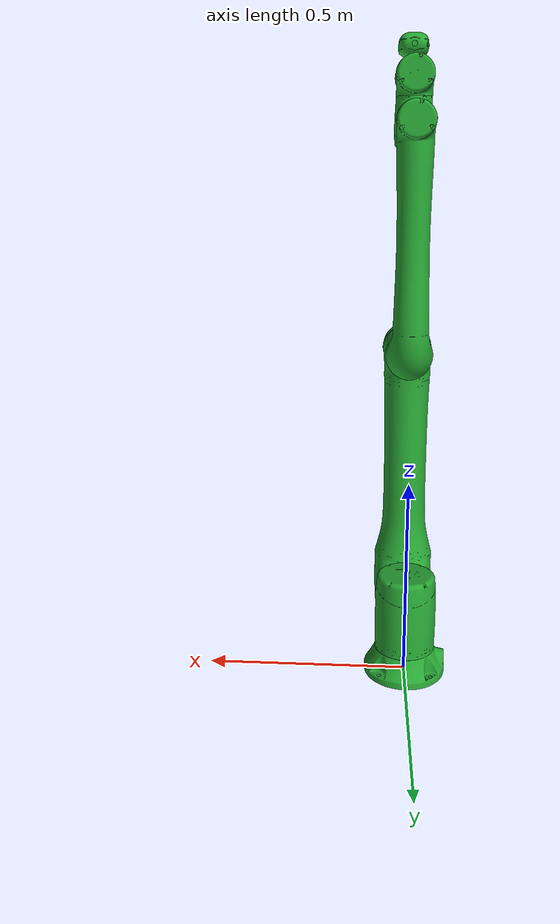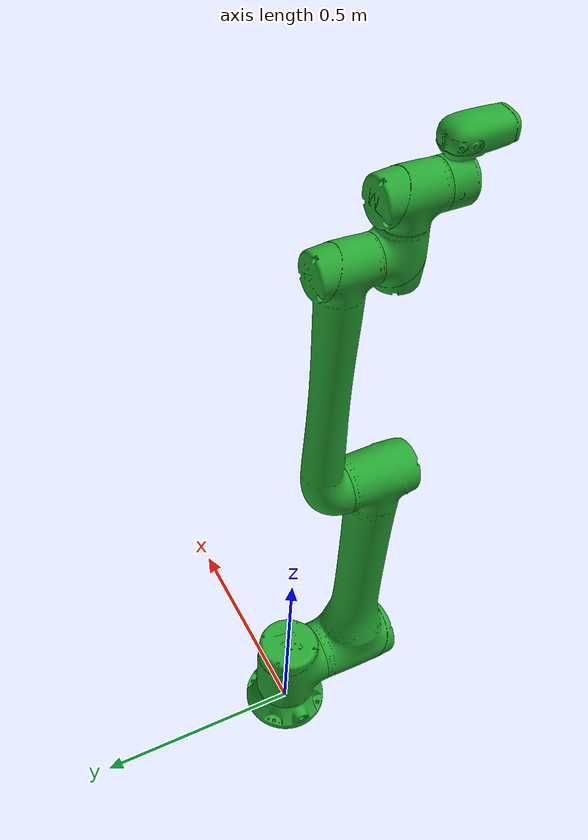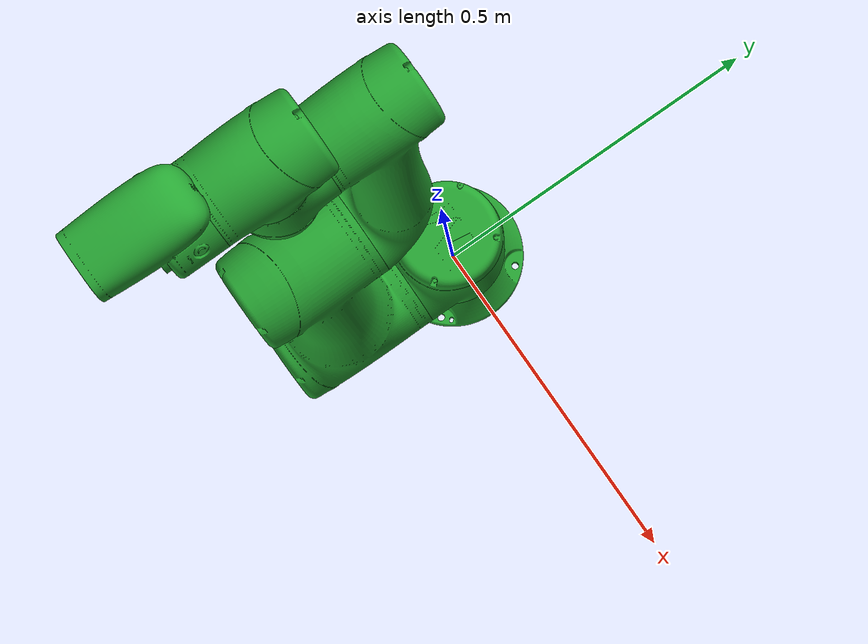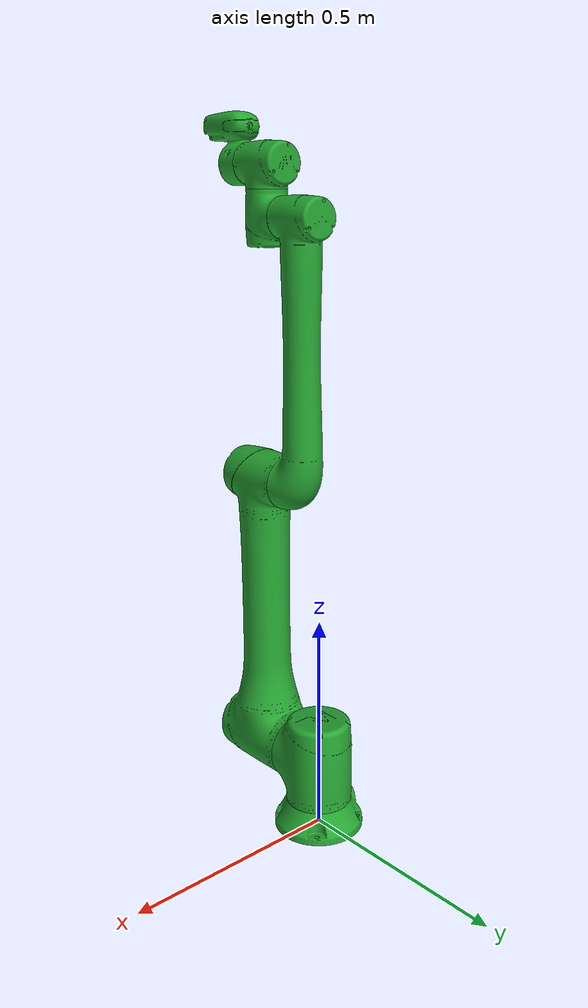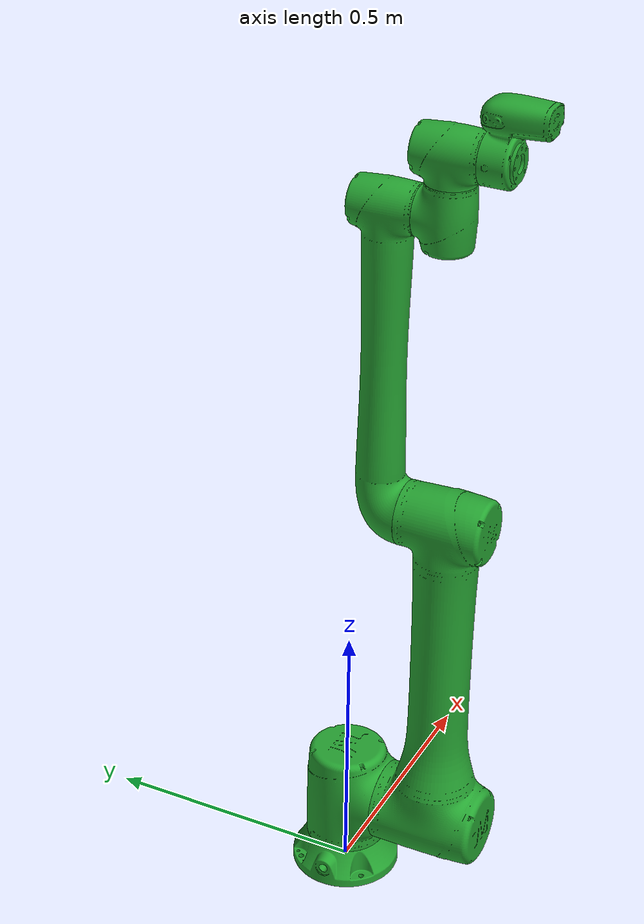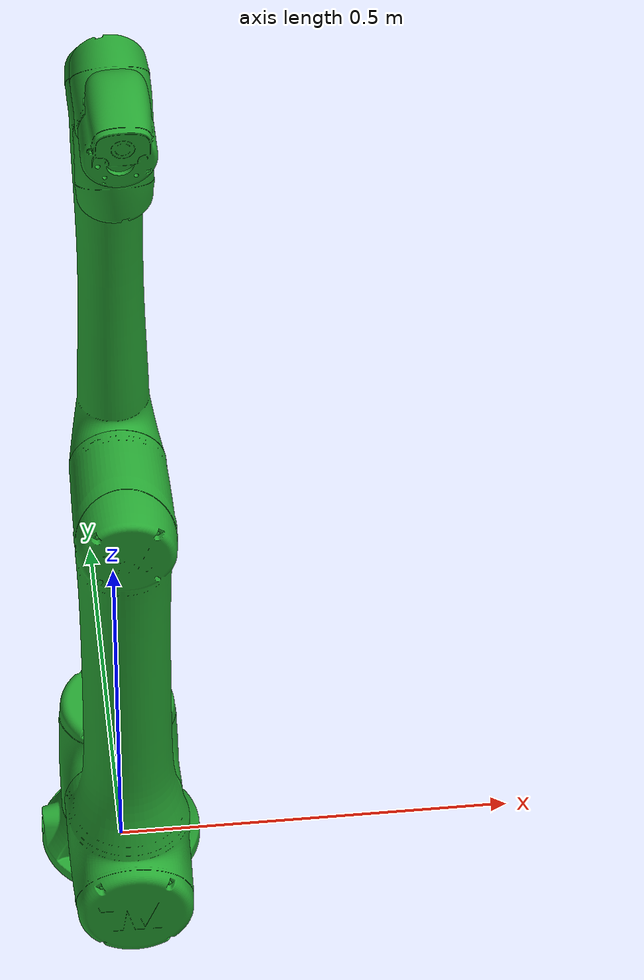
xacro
<?xml version="1.0"?>
<robot xmlns:xacro="http://www.ros.org/wiki/xacro" name="tm20">
    <xacro:arg name="initial_positions_file" default="initial_positions.yaml" />

    <!-- Import tm20 urdf file (실물 보정 모델; nominal 은 tm20.urdf.xacro) -->
    <xacro:include filename="$(find tm_description)/xacro/tm20-calib.urdf.xacro" />

    <!-- Import control_xacro -->
    <xacro:include filename="tm20.ros2_control.xacro" />

    <xacro:tm20_ros2_control name="FakeSystem" initial_positions_file="$(arg initial_positions_file)"/>

</robot>

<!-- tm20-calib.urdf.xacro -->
<robot xmlns:xacro="http://www.ros.org/wiki/xacro" name="tm20">
  <!-- ARGUMENTS -->
  <xacro:arg name="ns" default="" />
  <xacro:arg name="prefix" default="" />
  <xacro:arg name="color" default="none" />
  <xacro:arg name="trans_hw_iface" default="hardware_interface/PositionJointInterface" />

  <xacro:include filename="$(find tm_description)/xacro/macro.gazebo.xacro" />
  <xacro:include filename="$(find tm_description)/xacro/macro.transmission.xacro" />
  <xacro:include filename="$(find tm_description)/xacro/macro.materials.xacro" />

  <!-- Import TM Cobot: tm20 robot description file -->
  <!-- 실물 로봇(169.254.122.16)의 DHTable + DeltaDH 를 tm_mod_urdf 로 반영한 보정 모델. -->
  <!-- nominal 로 되돌리려면 tm20.urdf.xacro 를 대신 include 한다. -->
  <xacro:include filename="$(find tm_description)/xacro/macro.tm20-calib.urdf.xacro" />

  <xacro:tmr_gazebo ns="$(arg ns)" prefix="$(arg prefix)" />
  <xacro:tmr_transmission prefix="$(arg prefix)" hw_iface="$(arg trans_hw_iface)" />

  <!-- Import TM Cobot: mesh.color.default -->
  <xacro:property name="color" value="$(arg color)"/>
  <xacro:if value="${color == 'none'}">
    <xacro:tm20 ns="$(arg ns)" prefix="$(arg prefix)" color="emeraldgreen" format="obj"/>
  </xacro:if>

  <!-- Import TM Cobot: mesh.color.specific-->
  <xacro:unless value="${color == 'none'}">
    <xacro:tm20 ns="$(arg ns)" prefix="$(arg prefix)" color="${color}" format="obj" />
  </xacro:unless>

</robot>

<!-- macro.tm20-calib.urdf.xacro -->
<robot xmlns:xacro="http://www.ros.org/wiki/xacro">

  <xacro:include filename="$(find tm_description)/xacro/macro.inertial.xacro" />

  <xacro:macro name="tm20" params="ns prefix color format
    joint_1_lower_limit:=${radians(-270)}    joint_1_upper_limit:=${radians(270)}
    joint_2_lower_limit:=${radians(-180)}    joint_2_upper_limit:=${radians(180)}
    joint_3_lower_limit:=${radians(-166)}    joint_3_upper_limit:=${radians(166)}
    joint_4_lower_limit:=${radians(-180)}    joint_4_upper_limit:=${radians(180)}
    joint_5_lower_limit:=${radians(-180)}    joint_5_upper_limit:=${radians(180)}
    joint_6_lower_limit:=${radians(-270)}    joint_6_upper_limit:=${radians(270)}
    joint_1_velocity_limit:=${radians(90)}
    joint_2_velocity_limit:=${radians(90)}
    joint_3_velocity_limit:=${radians(120)}
    joint_4_velocity_limit:=${radians(150)}
    joint_5_velocity_limit:=${radians(180)}
    joint_6_velocity_limit:=${radians(225)}
    joint_1_effort_limit:=${350}
    joint_2_effort_limit:=${350}
    joint_3_effort_limit:=${170}
    joint_4_effort_limit:=${45}
    joint_5_effort_limit:=${45}
    joint_6_effort_limit:=${45}
    safety_limits:=false safety_pos_margin:=0.15
    safety_k_position:=20">

    <xacro:property name="damping_factor" value="0.000"/>
    <xacro:property name="d1" value="${damping_factor*0.1}"/>
    <xacro:property name="d2" value="${damping_factor*0.1}"/>
    <xacro:property name="d3" value="${damping_factor*0.1}"/>
    <xacro:property name="d4" value="${damping_factor*0.1}"/>
    <xacro:property name="d5" value="${damping_factor*0.1}"/>
    <xacro:property name="d6" value="${damping_factor*0.1}"/>

    <xacro:property name="friction_factor" value="0.000"/>
    <xacro:property name="f1" value="${friction_factor*0.1}"/>
    <xacro:property name="f2" value="${friction_factor*0.1}"/>
    <xacro:property name="f3" value="${friction_factor*0.1}"/>
    <xacro:property name="f4" value="${friction_factor*0.1}"/>
    <xacro:property name="f5" value="${friction_factor*0.1}"/>
    <xacro:property name="f6" value="${friction_factor*0.1}"/>

    <!-- Inertia parameters -->
    <xacro:property name="mass_0" value="1.0" />
    <xacro:property name="mass_1" value="7.6" />
    <xacro:property name="mass_2" value="14.0239" />
    <xacro:property name="mass_3" value="3.3577" />
    <xacro:property name="mass_4" value="1.576" />
    <xacro:property name="mass_5" value="1.576" />
    <xacro:property name="mass_6" value="0.4" />

    <xacro:property name="unit_factor" value="0.000001"/>
    <xacro:property name="ixx_1" value="${20289.334*unit_factor}" />
    <xacro:property name="ixx_2" value="${71505.715*unit_factor}" />
    <xacro:property name="ixx_3" value="${9755.469*unit_factor}" />
    <xacro:property name="ixx_4" value="${2058.405*unit_factor}" />
    <xacro:property name="ixx_5" value="${2058.405*unit_factor}" />
    <xacro:property name="ixx_6" value="${476.643*unit_factor}" />

    <xacro:property name="iyy_1" value="${20289.334*unit_factor}" />
    <xacro:property name="iyy_2" value="${1175878.900*unit_factor}" />
    <xacro:property name="iyy_3" value="${163347.190*unit_factor}" />
    <xacro:property name="iyy_4" value="${2563.079*unit_factor}" />
    <xacro:property name="iyy_5" value="${2563.079*unit_factor}" />
    <xacro:property name="iyy_6" value="${851.576*unit_factor}" />

    <xacro:property name="izz_1" value="${21396.271*unit_factor}" />
    <xacro:property name="izz_2" value="${1203393.300*unit_factor}" />
    <xacro:property name="izz_3" value="${166566.78*unit_factor}" />
    <xacro:property name="izz_4" value="${2643.21*unit_factor}" />
    <xacro:property name="izz_5" value="${2643.21*unit_factor}" />
    <xacro:property name="izz_6" value="${959.690*unit_factor}" />

    <xacro:property name="specified_color_arms" default="false" />
    <xacro:property name="prefix_monochrome_command" default="true" />

    <!-- If other applications conflict with the color definition of URDF, try disable_prefix_color to close it -->
    <xacro:property name="disable_prefix_color" default="false" />
    <xacro:if value="${disable_prefix_color}">
      <prefix_monochrome_command value="false"/>
    </xacro:if>
    <xacro:if value="${format == 'stl'}">
      <specified_color_arms value="true"/>
      <prefix_monochrome_command value="false"/>
    </xacro:if>
    <xacro:if value="${prefix_monochrome_command}">
      <xacro:tm_materials/>
    </xacro:if>

<!--LinkDescription-->
  <link name="${prefix}link_0">
    <visual>
      <geometry>
        <mesh filename="package://tm_description/meshes/tm12/visual/tm12-base.${format}" />
      </geometry>
      <xacro:if value="${specified_color_arms}">
        <xacro:tm_material_whitegraphite />
      </xacro:if>
      <xacro:if value="${prefix_monochrome_command}">
        <material name="${color}" />
      </xacro:if>
    </visual>
    <collision>
      <geometry>
        <mesh filename="package://tm_description/meshes/tm12/collision/tm12-base_c.stl" />
      </geometry>
    </collision>
    <xacro:cylinder_inertial_z radius="0.06" length="0.05" mass="${mass_0}">
      <origin rpy="0.000000 0.000000 0.000000" xyz="0.000000 0.000000 0.000000" />
    </xacro:cylinder_inertial_z>
  </link>
  <joint name="${prefix}joint_1" type="revolute">
    <parent link="${prefix}link_0" />
    <child link="${prefix}link_1" />
    <origin rpy="0.000000 -0.000000 -0.000008" xyz="0.000000 0.000000 0.165200" />
    <axis xyz="0 0 1" />
    <limit lower="${joint_1_lower_limit}" upper="${joint_1_upper_limit}" velocity="${joint_1_velocity_limit}" effort="${joint_1_effort_limit}" />
    <xacro:if value="${safety_limits}">
      <safety_controller soft_lower_limit="${joint_1_lower_limit + safety_pos_margin}" soft_upper_limit="${joint_1_upper_limit - safety_pos_margin}" k_position="${safety_k_position}" k_velocity="0.0" />
    </xacro:if>
    <dynamics damping="${d1}" friction="${f1}" />
  </joint>
  <link name="${prefix}link_1">
    <visual>
      <geometry>
        <mesh filename="package://tm_description/meshes/tm20/visual/tm20-j1.${format}" />
      </geometry>
      <xacro:if value="${specified_color_arms}">
        <xacro:tm_material_darkolive />
      </xacro:if>
      <xacro:if value="${prefix_monochrome_command}">
        <material name="${color}" />
      </xacro:if>
    </visual>
    <collision>
      <geometry>
        <mesh filename="package://tm_description/meshes/tm20/collision/tm20-j1_c.stl" />
      </geometry>
    </collision>
    <inertial>
      <origin rpy="0.000000 0.000000 0.000000" xyz="0.000000 0.000000 0.000000" />
      <mass value="${mass_1}" />
      <inertia ixx="${ixx_1}" ixy="0.000000" ixz="0.000000" iyy="${iyy_1}" iyz="0.000000" izz="${izz_1}" />
    </inertial>
  </link>
  <joint name="${prefix}joint_2" type="revolute">
    <parent link="${prefix}link_1" />
    <child link="${prefix}link_2" />
    <origin rpy="-1.323733 -1.566108 -0.247068" xyz="0.000008 -0.000013 -0.000000" />
    <axis xyz="0 0 1" />
    <limit lower="${joint_2_lower_limit}" upper="${joint_2_upper_limit}" velocity="${joint_2_velocity_limit}" effort="${joint_2_effort_limit}" />
    <xacro:if value="${safety_limits}">
      <safety_controller soft_lower_limit="${joint_2_lower_limit + safety_pos_margin}" soft_upper_limit="${joint_2_upper_limit - safety_pos_margin}" k_position="${safety_k_position}" k_velocity="0.0" />
    </xacro:if>
    <dynamics damping="${d2}" friction="${f2}" />
  </joint>
  <link name="${prefix}link_2">
    <visual>
      <geometry>
        <mesh filename="package://tm_description/meshes/tm20/visual/tm20-arm1.${format}" />
      </geometry>
      <xacro:if value="${specified_color_arms}">
        <xacro:tm_material_darkolive />
      </xacro:if>
      <xacro:if value="${prefix_monochrome_command}">
        <material name="${color}" />
      </xacro:if>
    </visual>
    <collision>
      <geometry>
        <mesh filename="package://tm_description/meshes/tm20/collision/tm20-arm1_c.stl" />
      </geometry>
    </collision>
    <inertial>
      <origin rpy="0.000000 0.000000 0.000000" xyz="0.000000 0.000000 0.000000" />
      <mass value="${mass_2}" />
      <inertia ixx="${ixx_2}" ixy="0.000000" ixz="0.000000" iyy="${iyy_2}" iyz="0.000000" izz="${izz_2}" />
    </inertial>
  </link>
  <joint name="${prefix}joint_3" type="revolute">
    <parent link="${prefix}link_2" />
    <child link="${prefix}link_3" />
    <origin rpy="0.000682 0.000145 -0.000735" xyz="0.636103 0.000000 -0.000013" />
    <axis xyz="0 0 1" />
    <limit lower="${joint_3_lower_limit}" upper="${joint_3_upper_limit}" velocity="${joint_3_velocity_limit}" effort="${joint_3_effort_limit}" />
    <xacro:if value="${safety_limits}">
      <safety_controller soft_lower_limit="${joint_3_lower_limit + safety_pos_margin}" soft_upper_limit="${joint_3_upper_limit - safety_pos_margin}" k_position="${safety_k_position}" k_velocity="0.0" />
    </xacro:if>
    <dynamics damping="${d3}" friction="${f3}" />
  </joint>
  <link name="${prefix}link_3">
    <visual>
      <geometry>
        <mesh filename="package://tm_description/meshes/tm20/visual/tm20-arm2.${format}" />
      </geometry>
      <xacro:if value="${specified_color_arms}">
        <xacro:tm_material_gold />
      </xacro:if>
      <xacro:if value="${prefix_monochrome_command}">
        <material name="${color}" />
      </xacro:if>
    </visual>
    <collision>
      <geometry>
        <mesh filename="package://tm_description/meshes/tm20/collision/tm20-arm2_c.stl" />
      </geometry>
    </collision>
    <inertial>
      <origin rpy="0.000000 0.000000 0.000000" xyz="0.000000 0.000000 0.000000" />
      <mass value="${mass_3}" />
      <inertia ixx="${ixx_3}" ixy="0.000000" ixz="0.000000" iyy="${iyy_3}" iyz="0.000000" izz="${izz_3}" />
    </inertial>
  </link>
  <joint name="${prefix}joint_4" type="revolute">
    <parent link="${prefix}link_3" />
    <child link="${prefix}link_4" />
    <origin rpy="0.001196 -0.000117 1.567048" xyz="0.557706 0.000019 -0.156313" />
    <axis xyz="0 0 1" />
    <limit lower="${joint_4_lower_limit}" upper="${joint_4_upper_limit}" velocity="${joint_4_velocity_limit}" effort="${joint_4_effort_limit}" />
    <xacro:if value="${safety_limits}">
      <safety_controller soft_lower_limit="${joint_4_lower_limit + safety_pos_margin}" soft_upper_limit="${joint_4_upper_limit - safety_pos_margin}" k_position="${safety_k_position}" k_velocity="0.0" />
    </xacro:if>
    <dynamics damping="${d4}" friction="${f4}" />
  </joint>
  <link name="${prefix}link_4">
    <visual>
      <geometry>
        <mesh filename="package://tm_description/meshes/tm20/visual/tm20-j5.${format}" />
      </geometry>
      <xacro:if value="${specified_color_arms}">
        <xacro:tm_material_darkolive />
      </xacro:if>
      <xacro:if value="${prefix_monochrome_command}">
        <material name="${color}" />
      </xacro:if>
    </visual>
    <collision>
      <geometry>
        <mesh filename="package://tm_description/meshes/tm20/collision/tm20-j5_c.stl" />
      </geometry>
    </collision>
    <inertial>
      <origin rpy="0.000000 0.000000 0.000000" xyz="0.000000 0.000000 0.000000" />
      <mass value="${mass_4}" />
      <inertia ixx="${ixx_4}" ixy="0.000000" ixz="0.000000" iyy="${iyy_4}" iyz="0.000000" izz="${izz_4}" />
    </inertial>
  </link>
  <joint name="${prefix}joint_5" type="revolute">
    <parent link="${prefix}link_4" />
    <child link="${prefix}link_5" />
    <origin rpy="1.570893 -0.001088 -0.003749" xyz="-0.000406 -0.106004 -0.000010" />
    <axis xyz="0 0 1" />
    <limit lower="${joint_5_lower_limit}" upper="${joint_5_upper_limit}" velocity="${joint_5_velocity_limit}" effort="${joint_5_effort_limit}" />
    <xacro:if value="${safety_limits}">
      <safety_controller soft_lower_limit="${joint_5_lower_limit + safety_pos_margin}" soft_upper_limit="${joint_5_upper_limit - safety_pos_margin}" k_position="${safety_k_position}" k_velocity="0.0" />
    </xacro:if>
    <dynamics damping="${d5}" friction="${f5}" />
  </joint>
  <link name="${prefix}link_5">
    <visual>
      <geometry>
        <mesh filename="package://tm_description/meshes/tm20/visual/tm20-j6.${format}" />
      </geometry>
      <xacro:if value="${specified_color_arms}">
        <xacro:tm_material_darkolive />
      </xacro:if>
      <xacro:if value="${prefix_monochrome_command}">
        <material name="${color}" />
      </xacro:if>
    </visual>
    <collision>
      <geometry>
        <mesh filename="package://tm_description/meshes/tm20/collision/tm20-j6_c.stl" />
      </geometry>
    </collision>
    <inertial>
      <origin rpy="0.000000 0.000000 0.000000" xyz="0.000000 0.000000 0.000000" />
      <mass value="${mass_5}" />
      <inertia ixx="${ixx_5}" ixy="0.000000" ixz="0.000000" iyy="${iyy_5}" iyz="0.000000" izz="${izz_5}" />
    </inertial>
  </link>
  <joint name="${prefix}joint_6" type="revolute">
    <parent link="${prefix}link_5" />
    <child link="${prefix}link_6" />
    <origin rpy="1.570910 0.002541 0.001089" xyz="0.000131 -0.113157 -0.000013" />
    <axis xyz="0 0 1" />
    <limit lower="${joint_6_lower_limit}" upper="${joint_6_upper_limit}" velocity="${joint_6_velocity_limit}" effort="${joint_6_effort_limit}" />
    <xacro:if value="${safety_limits}">
      <safety_controller soft_lower_limit="${joint_6_lower_limit + safety_pos_margin}" soft_upper_limit="${joint_6_upper_limit - safety_pos_margin}" k_position="${safety_k_position}" k_velocity="0.0" />
    </xacro:if>
    <dynamics damping="${d6}" friction="${f6}" />
  </joint>
  <link name="${prefix}link_6">
    <visual>
      <geometry>
        <mesh filename="package://tm_description/meshes/tm5-900/visual/tmr_ee.${format}" />
      </geometry>
      <xacro:if value="${specified_color_arms}">
        <xacro:tm_material_purewhite />
      </xacro:if>
      <xacro:if value="${prefix_monochrome_command}">
        <material name="${color}" />
      </xacro:if>
    </visual>
    <collision>
      <geometry>
        <mesh filename="package://tm_description/meshes/tm5-900/collision/tmr_ee_c.stl" />
      </geometry>
    </collision>
    <inertial>
      <origin rpy="0.000000 0.000000 0.000000" xyz="0.000000 0.000000 0.000000" />
      <mass value="${mass_6}" />
      <inertia ixx="${ixx_6}" ixy="0.000000" ixz="0.000000" iyy="${iyy_6}" iyz="0.000000" izz="${izz_6}" />
    </inertial>
  </link>
  <link name="${prefix}base" />
  <joint name="${prefix}base_fixed_joint" type="fixed">
    <parent link="${prefix}base" />
    <child link="${prefix}link_0" />
    <origin rpy="0.0 0.0 0.0" xyz="0.0 0.0 0.0" />
  </joint>
  <link name="${prefix}flange" />
  <joint name="${prefix}flange_fixed_joint" type="fixed">
    <parent link="${prefix}link_6" />
    <child link="${prefix}flange" />
    <origin rpy="0.002340 -0.001382 -0.000003" xyz="0.000058 0.000000 0.000000" />
  </joint>
<!--LinkDescription-->

  </xacro:macro>

</robot>
